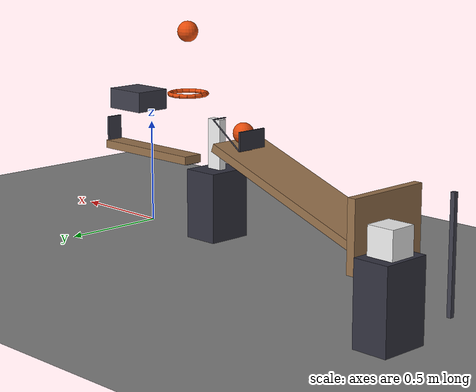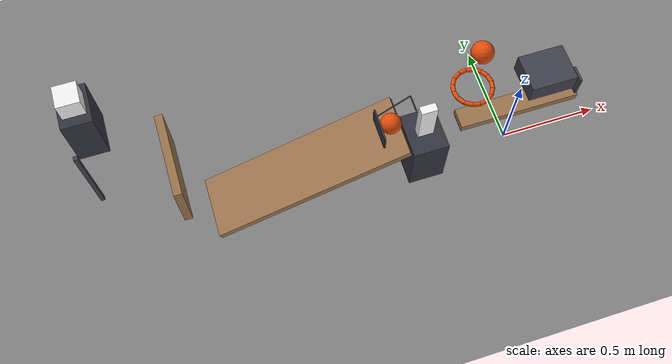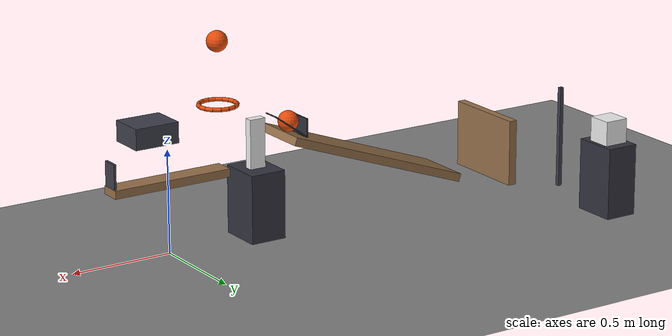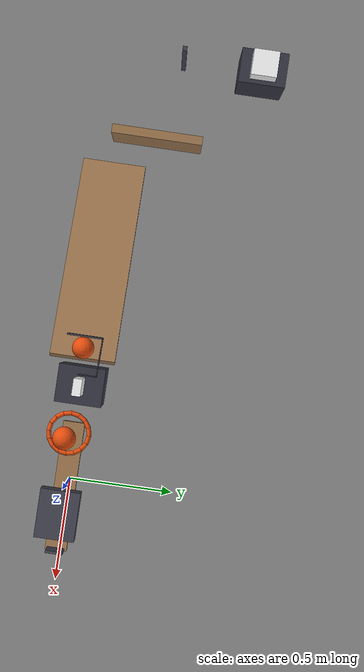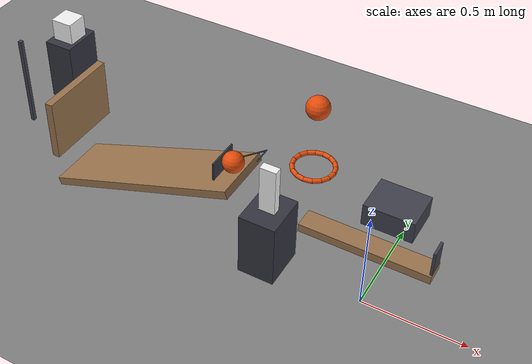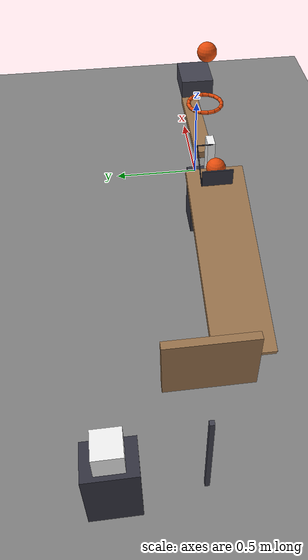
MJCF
<mujoco model="gravity_chain_with_released_keeper">
  <compiler angle="radian"/>
  <option timestep="0.002"/>
  <worldbody>
    <geom name="floor" type="plane" size="6 6 0.1" friction="0.72 0.001 0.01"/>
    <body name="lever1" pos="0 0 0.35">
      <joint name="lever_hinge" type="hinge" pos="0 0 0" axis="0 1 0" limited="true" range="-0.785398 0" damping="0.04"/>
      <geom name="lever1" type="box" pos="0 0 0" size="0.3 0.05 0.02" mass="0.498" friction="0.72 0.005 0.0001" solref="0.01 1" rgba="0.6 0.45 0.3 1"/>
      <geom name="lever striker" type="box" pos="0.294 0 0.08" size="0.006 0.04 0.06" mass="0.001" friction="0.72 0.005 0.0001" solref="0.01 1" rgba="0.25 0.25 0.3 1"/>
      <geom name="lever counterweight" type="box" pos="-0.294 0 -0.021" size="0.006 0.04 0.001" mass="0.001" friction="0.72 0.005 0.0001" solref="0.01 1" rgba="0.25 0.25 0.3 1"/>
    </body>
    <body name="ring1">
      <geom name="ring1_00" type="capsule" size="0.01" fromto="-0.18 0 0.67 -0.186851 0.0344415 0.67" friction="0.72 0.005 0.0001" solref="0.01 1" rgba="0.9 0.3 0.05 1"/>
      <geom name="ring1_01" type="capsule" size="0.01" fromto="-0.186851 0.0344415 0.67 -0.20636 0.0636396 0.67" friction="0.72 0.005 0.0001" solref="0.01 1" rgba="0.9 0.3 0.05 1"/>
      <geom name="ring1_02" type="capsule" size="0.01" fromto="-0.20636 0.0636396 0.67 -0.235558 0.0831492 0.67" friction="0.72 0.005 0.0001" solref="0.01 1" rgba="0.9 0.3 0.05 1"/>
      <geom name="ring1_03" type="capsule" size="0.01" fromto="-0.235558 0.0831492 0.67 -0.27 0.09 0.67" friction="0.72 0.005 0.0001" solref="0.01 1" rgba="0.9 0.3 0.05 1"/>
      <geom name="ring1_04" type="capsule" size="0.01" fromto="-0.27 0.09 0.67 -0.304442 0.0831492 0.67" friction="0.72 0.005 0.0001" solref="0.01 1" rgba="0.9 0.3 0.05 1"/>
      <geom name="ring1_05" type="capsule" size="0.01" fromto="-0.304442 0.0831492 0.67 -0.33364 0.0636396 0.67" friction="0.72 0.005 0.0001" solref="0.01 1" rgba="0.9 0.3 0.05 1"/>
      <geom name="ring1_06" type="capsule" size="0.01" fromto="-0.33364 0.0636396 0.67 -0.353149 0.0344415 0.67" friction="0.72 0.005 0.0001" solref="0.01 1" rgba="0.9 0.3 0.05 1"/>
      <geom name="ring1_07" type="capsule" size="0.01" fromto="-0.353149 0.0344415 0.67 -0.36 1.10218e-17 0.67" friction="0.72 0.005 0.0001" solref="0.01 1" rgba="0.9 0.3 0.05 1"/>
      <geom name="ring1_08" type="capsule" size="0.01" fromto="-0.36 1.10218e-17 0.67 -0.353149 -0.0344415 0.67" friction="0.72 0.005 0.0001" solref="0.01 1" rgba="0.9 0.3 0.05 1"/>
      <geom name="ring1_09" type="capsule" size="0.01" fromto="-0.353149 -0.0344415 0.67 -0.33364 -0.0636396 0.67" friction="0.72 0.005 0.0001" solref="0.01 1" rgba="0.9 0.3 0.05 1"/>
      <geom name="ring1_10" type="capsule" size="0.01" fromto="-0.33364 -0.0636396 0.67 -0.304442 -0.0831492 0.67" friction="0.72 0.005 0.0001" solref="0.01 1" rgba="0.9 0.3 0.05 1"/>
      <geom name="ring1_11" type="capsule" size="0.01" fromto="-0.304442 -0.0831492 0.67 -0.27 -0.09 0.67" friction="0.72 0.005 0.0001" solref="0.01 1" rgba="0.9 0.3 0.05 1"/>
      <geom name="ring1_12" type="capsule" size="0.01" fromto="-0.27 -0.09 0.67 -0.235558 -0.0831492 0.67" friction="0.72 0.005 0.0001" solref="0.01 1" rgba="0.9 0.3 0.05 1"/>
      <geom name="ring1_13" type="capsule" size="0.01" fromto="-0.235558 -0.0831492 0.67 -0.20636 -0.0636396 0.67" friction="0.72 0.005 0.0001" solref="0.01 1" rgba="0.9 0.3 0.05 1"/>
      <geom name="ring1_14" type="capsule" size="0.01" fromto="-0.20636 -0.0636396 0.67 -0.186851 -0.0344415 0.67" friction="0.72 0.005 0.0001" solref="0.01 1" rgba="0.9 0.3 0.05 1"/>
      <geom name="ring1_15" type="capsule" size="0.01" fromto="-0.186851 -0.0344415 0.67 -0.18 -2.20436e-17 0.67" friction="0.72 0.005 0.0001" solref="0.01 1" rgba="0.9 0.3 0.05 1"/>
    </body>
    <body name="ball1" pos="-0.27 0 0.97">
      <freejoint/>
      <geom name="ball1" type="sphere" pos="0 0 0" size="0.05" mass="0.2" condim="6" friction="0.72 0.001 0.01" solref="0.01 1" rgba="0.9 0.3 0.05 1"/>
    </body>
    <body name="cart1" pos="0.1 100 0.603">
      <joint name="cart_guide" type="hinge" pos="0 0 0" axis="0 0 1" limited="true" range="-0.00500037 0" damping="2000"/>
      <geom name="cart1" type="box" pos="0 -100 0" size="0.11 0.09 0.05" mass="0.5" friction="0.72 0.005 0.0001" solref="0.01 1" rgba="0.25 0.25 0.3 1"/>
    </body>
    <body name="domino pedestal">
      <geom name="domino pedestal" type="box" pos="-0.47 0 0.1665" size="0.09 0.11 0.1665" friction="0.72 0.005 0.0001" solref="0.01 1" rgba="0.2 0.2 0.25 1"/>
    </body>
    <body name="domino1" pos="-0.47 0 0.453">
      <freejoint/>
      <geom name="domino1" type="box" pos="0 0 0" size="0.04 0.02 0.12" mass="0.25" friction="0.72 0.005 0.0001" solref="0.01 1" rgba="0.95 0.95 0.95 1"/>
    </body>
    <body name="ramp1">
      <geom name="ramp1" type="box" pos="-1.06772 0 0.302216" size="0.5 0.15 0.02" euler="0 2.79253 0" friction="0.72 0.001 0.0001" solref="0.01 1" rgba="0.6 0.45 0.3 1"/>
    </body>
    <body name="ball keeper" pos="-0.704 0 0.4602">
      <joint name="keeper_hinge" type="hinge" pos="0 0 0" axis="0 1 0" limited="true" range="-1.91986 0" stiffness="0.075" springref="0.785398" damping="0.04"/>
      <geom name="ball keeper" type="box" pos="0 0 0.045" size="0.004 0.08 0.045" mass="1" friction="0.72 0.005 0.0001" solref="0.01 1" rgba="0.2 0.2 0.25 1"/>
      <geom name="keeper side mount" type="capsule" size="0.003" fromto="0 0 0 0 0.08 0" mass="0.001" friction="0.72 0.005 0.0001" solref="0.01 1" rgba="0.25 0.25 0.3 1"/>
      <geom name="keeper side arm" type="capsule" size="0.003" fromto="0 0.08 0 0.173 0.08 0.1263" mass="0.001" friction="0.72 0.005 0.0001" solref="0.01 1" rgba="0.25 0.25 0.3 1"/>
      <geom name="keeper trigger bar" type="capsule" size="0.003" fromto="0.173 0.08 0.1263 0.173 0 0.1263" mass="0.001" friction="0.72 0.005 0.0001" solref="0.01 1" rgba="0.25 0.25 0.3 1"/>
    </body>
    <body name="ball2" pos="-0.65 0 0.528743">
      <freejoint/>
      <geom name="ball2" type="sphere" pos="0 0 0" size="0.05" mass="0.2" condim="6" friction="0.72 0.001 0.0001" solref="0.01 1" rgba="0.9 0.3 0.05 1"/>
    </body>
    <body name="door1" pos="-1.6644 0.4 0.3">
      <joint name="door_hinge" type="hinge" pos="0 0 0" axis="0 0 1" limited="true" range="-1.22173 0" damping="0.04"/>
      <geom name="door1" type="box" pos="0 -0.21 0" size="0.02 0.21 0.16" mass="0.45" friction="0.72 0.005 0.0001" solref="0.01 1" rgba="0.6 0.45 0.3 1"/>
    </body>
    <body name="pendulum1" pos="-2.05907 0.26 0.03">
      <joint name="pendulum_hinge" type="hinge" pos="0 0 0" axis="1 0 0" limited="true" range="-0.663225 0" damping="0.04"/>
      <geom name="pendulum1" type="box" pos="0 0 0.25" size="0.01 0.01 0.25" mass="0.35" friction="0.72 0.005 0.0001" solref="0.01 1" rgba="0.25 0.25 0.3 1"/>
    </body>
    <body name="block pedestal">
      <geom name="block pedestal" type="box" pos="-2.05907 0.634 0.175" size="0.08 0.11 0.175" friction="0.72 0.005 0.0001" solref="0.01 1" rgba="0.2 0.2 0.25 1"/>
    </body>
    <body name="block1" pos="-2.05907 0.634 0.41">
      <freejoint/>
      <geom name="block1" type="box" pos="0 0 0" size="0.06 0.06 0.06" mass="0.35" friction="0.72 0.005 0.0001" solref="0.01 1" rgba="0.95 0.95 0.95 1"/>
    </body>
  </worldbody>
  <keyframe>
    <key name="start" qpos="0 -0.27 0 0.97 1 0 0 0 0 -0.47 0 0.453 1 0 0 0 0 -0.65 0 0.528743 1 0 0 0 0 0 -2.05907 0.634 0.41 1 0 0 0" qvel="0 0 0 0 0 0 0 0 0 0 0 0 0 0 0 0 0 0 0 0 0 0 0 0 0 0 0 0 0"/>
  </keyframe>
</mujoco>
